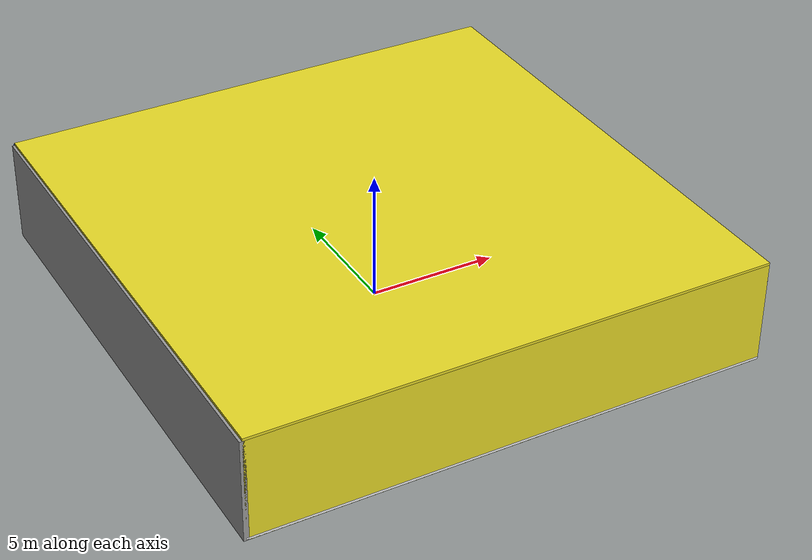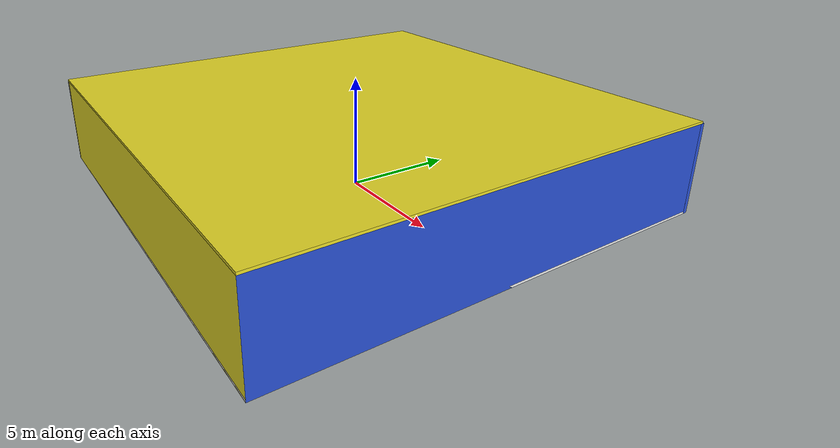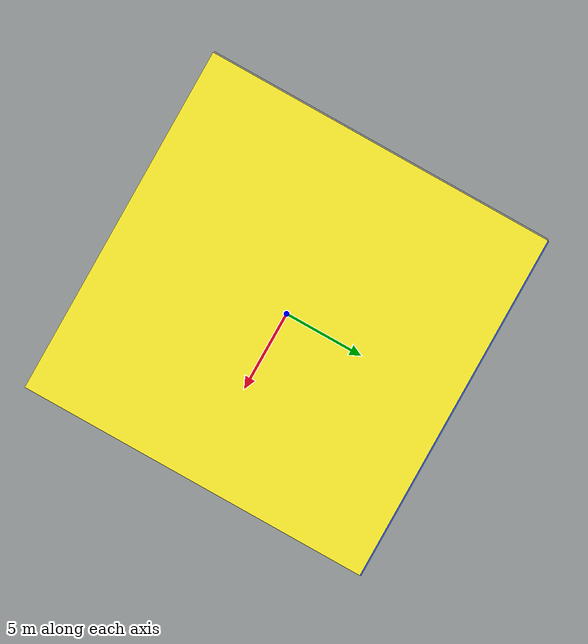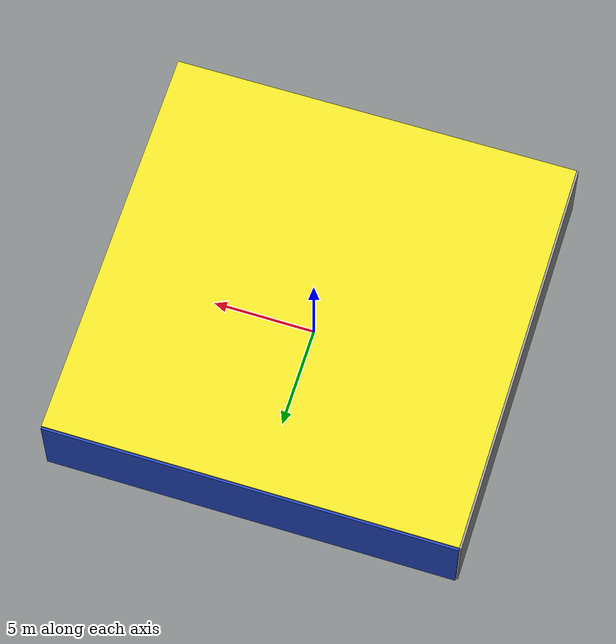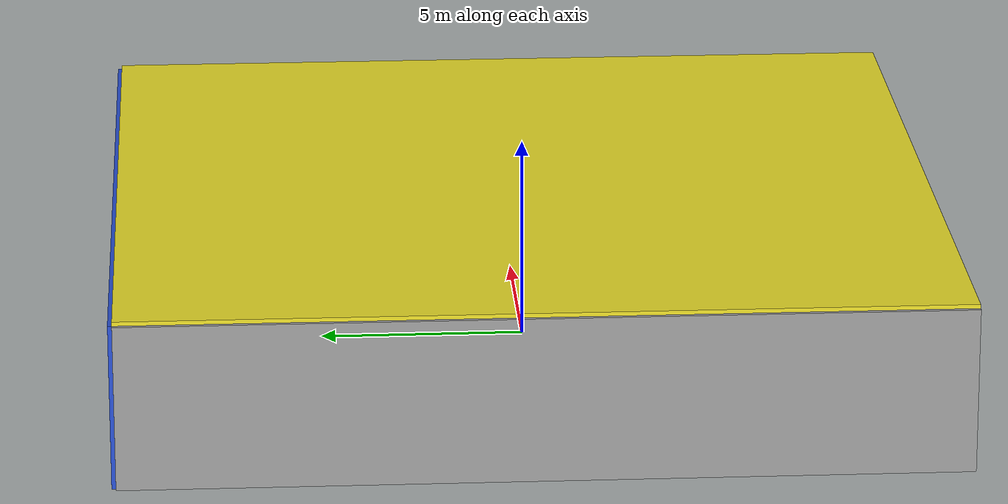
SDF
<sdf version="1.4">
 <world name="default">
  <physics type="ode">
   <max_step_size>0.001</max_step_size>
   <real_time_factor>1</real_time_factor>
   <real_time_update_rate>1000</real_time_update_rate>
   <gravity>0 0 -9.8</gravity>
  </physics>
  <scene><ambient>0.4 0.4 0.4 1</ambient><background>0.7 0.7 0.7 1</background><shadows>1</shadows></scene>
  <model name="Surrounding">
   <static>1</static>
   <link name="Ceiling">
    <collision name="Ceiling_Collision"><geometry><box><size>20 20 0.1</size></box></geometry></collision>
    <visual name="Ceiling_Visual">
     <geometry><box><size>20 20 0.1</size></box></geometry>
     <material>
      <script><uri>file://media/materials/scripts/gazebo.material</uri><name>Gazebo/Yellow</name></script>
     </material>
    </visual>
    <pose>0 0 4.05 0 0 0</pose>
   </link>
   <link name="Wall_South">
    <collision name="Wall_South_Collision">
     <geometry><box><size>20 0 4</size></box></geometry>
     <pose>0 0 2 0 -0 0</pose>
    </collision>
    <visual name="Wall_South_Visual">
     <pose>0 0 2 0 -0 0</pose>
     <geometry><box><size>20 0 4</size></box></geometry>
     <material>
      <script><uri>file://media/materials/scripts/gazebo.material</uri><name>Gazebo/YellowGlow</name></script>
     </material>
    </visual>
    <velocity_decay><linear>0</linear><angular>0</angular></velocity_decay>
    <pose>0 -10 0 0 -0 0</pose>
   </link>
   <link name="Wall_East">
    <collision name="Wall_21_Collision">
     <geometry><box><size>20 0 4</size></box></geometry>
     <pose>0 0 2 0 -0 0</pose>
    </collision>
    <visual name="Wall_21_Visual">
     <pose>0 0 2 0 -0 0</pose>
     <geometry><box><size>20 0 4</size></box></geometry>
     <material>
      <script><uri>file://media/materials/scripts/gazebo.material</uri><name>Gazebo/Blue</name></script>
     </material>
    </visual>
    <velocity_decay><linear>0</linear><angular>0</angular></velocity_decay>
    <pose>10 0 0 0 -0 1.5708</pose>
   </link>
   <link name="Wall_North">
    <collision name="Wall_22_Collision">
     <geometry><box><size>20 0.2 4</size></box></geometry>
     <pose>0 0 2 0 -0 0</pose>
    </collision>
    <visual name="Wall_22_Visual">
     <pose>0 0 2 0 -0 0</pose>
     <geometry><box><size>20 0.2 4</size></box></geometry>
     <material>
      <script><uri>file://media/materials/scripts/gazebo.material</uri><name>Gazebo/Blue</name></script>
     </material>
    </visual>
    <velocity_decay><linear>0</linear><angular>0</angular></velocity_decay>
    <pose>0 10 0 0 -0 0</pose>
   </link>
   <link name="Wall_West">
    <collision name="Wall_23_Collision">
     <geometry><box><size>20 0.2 4</size></box></geometry>
     <pose>0 0 2 0 -0 0</pose>
    </collision>
    <visual name="Wall_23_Visual">
     <pose>0 0 2 0 -0 0</pose>
     <geometry><box><size>20 0.2 4</size></box></geometry>
     <material>
      <script><uri>file://media/materials/scripts/gazebo.material</uri><name>Gazebo/GreyGradientSky</name></script>
     </material>
    </visual>
    <velocity_decay><linear>0</linear><angular>0</angular></velocity_decay>
    <pose>-10 0 0 0 0 -1.5708</pose>
   </link>
   <link name="Ground_link">
    <collision name="collision">
     <pose>0 0 .05 0 -0 0</pose>
     <geometry><box><size>20 20 0.1</size></box></geometry>
    </collision>
    <visual name="visual">
     <pose>0 0 .05 0 -0 0</pose>
     <geometry><box><size>20 20 0.1</size></box></geometry>
     <material>
      <script><uri>file://media/materials/scripts/gazebo.material</uri><name>Gazebo/White</name></script>
     </material>
    </visual>
   </link>
   <static>1</static>
  </model>
  <spherical_coordinates>
   <surface_model>EARTH_WGS84</surface_model>
   <latitude_deg>0</latitude_deg>
   <longitude_deg>0</longitude_deg>
   <elevation>0</elevation>
   <heading_deg>0</heading_deg>
  </spherical_coordinates>
  <light name="lightball_0" type="diffuse">
   <diffuse>0.8 0.8 0.8 1</diffuse>
   <specular>0.2 0.2 0.2 1</specular>
   <attenuation>
    <range>100</range>
    <constant>0.7</constant>
    <linear>0.01</linear>
    <quadratic>0.001</quadratic>
   </attenuation>
   <direction>-0.5 0.1 -0.9</direction>
   <pose>-9.02049176771 0.979372460372 3.10922180972 0 0 0</pose>
  </light>
  <light name="lightball_1" type="diffuse">
   <diffuse>0.8 0.8 0.8 1</diffuse>
   <specular>0.2 0.2 0.2 1</specular>
   <attenuation>
    <range>100</range>
    <constant>0.7</constant>
    <linear>0.01</linear>
    <quadratic>0.001</quadratic>
   </attenuation>
   <direction>-0.5 0.1 -0.9</direction>
   <pose>5.34812555786 -8.36072582806 1.98223913162 0 0 0</pose>
  </light>
  <light name="lightball_2" type="diffuse">
   <diffuse>0.8 0.8 0.8 1</diffuse>
   <specular>0.2 0.2 0.2 1</specular>
   <attenuation>
    <range>100</range>
    <constant>0.7</constant>
    <linear>0.01</linear>
    <quadratic>0.001</quadratic>
   </attenuation>
   <direction>-0.5 0.1 -0.9</direction>
   <pose>2.54060089787 7.4093626631 3.18627208361 0 0 0</pose>
  </light>
  <light name="lightball_3" type="diffuse">
   <diffuse>0.8 0.8 0.8 1</diffuse>
   <specular>0.2 0.2 0.2 1</specular>
   <attenuation>
    <range>100</range>
    <constant>0.7</constant>
    <linear>0.01</linear>
    <quadratic>0.001</quadratic>
   </attenuation>
   <direction>-0.5 0.1 -0.9</direction>
   <pose>5.40389508168 7.19830218969 2.15029610346 0 0 0</pose>
  </light>
  <light name="lightball_4" type="diffuse">
   <diffuse>0.8 0.8 0.8 1</diffuse>
   <specular>0.2 0.2 0.2 1</specular>
   <attenuation>
    <range>100</range>
    <constant>0.7</constant>
    <linear>0.01</linear>
    <quadratic>0.001</quadratic>
   </attenuation>
   <direction>-0.5 0.1 -0.9</direction>
   <pose>3.12679834834 -8.44143762102 1.32563071518 0 0 0</pose>
  </light>
  <light name="lightball_5" type="diffuse">
   <diffuse>0.8 0.8 0.8 1</diffuse>
   <specular>0.2 0.2 0.2 1</specular>
   <attenuation>
    <range>100</range>
    <constant>0.7</constant>
    <linear>0.01</linear>
    <quadratic>0.001</quadratic>
   </attenuation>
   <direction>-0.5 0.1 -0.9</direction>
   <pose>-8.27544850223 0.149774887802 0.765687153884 0 0 0</pose>
  </light>
  <include><uri>model://table</uri><pose>-8.6507129263 7.17822733869 0 0 0 2.92806573589</pose></include>
  <include>
   <uri>model://construction_cone</uri>
   <pose>-4.08146837423 -5.63275106515 0 0 0 2.18813175661</pose>
  </include>
  <include><uri>model://cabinet</uri><pose>-0.438923103432 -4.64229646094 0 0 0 2.68068808226</pose></include>
  <include>
   <uri>model://construction_cone</uri>
   <pose>3.3591272831 -1.07083435206 0 0 0 0.0769665988758</pose>
  </include>
 </world>
</sdf>

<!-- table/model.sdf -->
<sdf version="1.5">
  <model name="table">
    <static>true</static>
    <link name="link">
      <collision name="surface">
        <pose>0 0 1.0 0 0 0</pose>
        <geometry>
          <box>
            <size>1.5 0.8 0.03</size>
          </box>
        </geometry>
        <surface>
          <friction>
            <ode>
              <mu>0.6</mu>
              <mu2>0.6</mu2>
            </ode>
          </friction>
        </surface>
      </collision>
      <visual name="visual1">
        <pose>0 0 1.0 0 0 0</pose>
        <geometry>
          <box>
            <size>1.5 0.8 0.03</size>
          </box>
        </geometry>
        <material>
          <script>
            <uri>model://media/materials/scripts/gazebo.material</uri>
            <name>Gazebo/Wood</name>
          </script>
        </material>
      </visual>
      <collision name="front_left_leg">
        <pose>0.68 0.38 0.5 0 0 0</pose>
        <geometry>
          <cylinder>
            <radius>0.02</radius>
            <length>1.0</length>
          </cylinder>
        </geometry>
      </collision>
      <visual name="front_left_leg">
        <pose>0.68 0.38 0.5 0 0 0</pose>
        <geometry>
          <cylinder>
            <radius>0.02</radius>
            <length>1.0</length>
          </cylinder>
        </geometry>
        <material>
          <script>
            <uri>model://media/materials/scripts/gazebo.material</uri>
            <name>Gazebo/Grey</name>
          </script>
        </material>
      </visual>
      <collision name="front_right_leg">
        <pose>0.68 -0.38 0.5 0 0 0</pose>
        <geometry>
          <cylinder>
            <radius>0.02</radius>
            <length>1.0</length>
          </cylinder>
        </geometry>
      </collision>
      <visual name="front_right_leg">
        <pose>0.68 -0.38 0.5 0 0 0</pose>
        <geometry>
          <cylinder>
            <radius>0.02</radius>
            <length>1.0</length>
          </cylinder>
        </geometry>
        <material>
          <script>
            <uri>model://media/materials/scripts/gazebo.material</uri>
            <name>Gazebo/Grey</name>
          </script>
        </material>
      </visual>
      <collision name="back_right_leg">
        <pose>-0.68 -0.38 0.5 0 0 0</pose>
        <geometry>
          <cylinder>
            <radius>0.02</radius>
            <length>1.0</length>
          </cylinder>
        </geometry>
      </collision>
      <visual name="back_right_leg">
        <pose>-0.68 -0.38 0.5 0 0 0</pose>
        <geometry>
          <cylinder>
            <radius>0.02</radius>
            <length>1.0</length>
          </cylinder>
        </geometry>
        <material>
          <script>
            <uri>model://media/materials/scripts/gazebo.material</uri>
            <name>Gazebo/Grey</name>
          </script>
        </material>
      </visual>
      <collision name="back_left_leg">
        <pose>-0.68 0.38 0.5 0 0 0</pose>
        <geometry>
          <cylinder>
            <radius>0.02</radius>
            <length>1.0</length>
          </cylinder>
        </geometry>
      </collision>
      <visual name="back_left_leg">
        <pose>-0.68 0.38 0.5 0 0 0</pose>
        <geometry>
          <cylinder>
            <radius>0.02</radius>
            <length>1.0</length>
          </cylinder>
        </geometry>
        <material>
          <script>
            <uri>model://media/materials/scripts/gazebo.material</uri>
            <name>Gazebo/Grey</name>
          </script>
        </material>
      </visual>
    </link>
  </model>
</sdf>

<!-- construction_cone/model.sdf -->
<sdf version="1.5">
  <model name="Construction Cone">
    <link name="link">
      <collision name="collision">
        <geometry>
          <mesh>
            <scale>10 10 10</scale>
            <uri>file://isr-testbed/construction_cone/meshes/construction_cone.dae</uri>
          </mesh>
        </geometry>
      </collision>
      <visual name="visual">
        <geometry>
          <mesh>
            <scale>10 10 10</scale>
            <uri>file://isr-testbed/construction_cone/meshes/construction_cone.dae</uri>
          </mesh>
        </geometry>
      </visual>
    </link>
  </model>
</sdf>

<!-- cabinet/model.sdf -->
<sdf version="1.5">
  <model name="cabinet">
    <static>true</static>
    <link name="cabinet_bottom_plate">
      <inertial>
        <pose>0 0 -1 0 0 0</pose>
        <inertia>
          <ixx>2.050000</ixx>
          <ixy>0</ixy>
          <ixz>0</ixz>
          <iyy>2.050000</iyy>
          <iyz>0</iyz>
          <izz>2.050000</izz>
        </inertia>
        <mass>25.000000</mass>
      </inertial>
      <collision name="cabinet_bottom_plate_geom">
        <pose>0 0 0.010000 0 0 0</pose>
        <geometry>
          <box>
            <size>0.450000 0.450000 0.020000</size>
          </box>
        </geometry>
      </collision>
      <visual name="cabinet_bottom_plate_geom_visual">
        <pose>0 0 0.010000 0 0 0</pose>
        <geometry>
          <box>
            <size>0.450000 0.450000 0.020000</size>
          </box>
        </geometry>
        <material>
          <script>
            <uri>model://media/materials/scripts/gazebo.material</uri>
            <name>Gazebo/Wood</name>
          </script>
        </material>
      </visual>
      <collision name="cabinet_bottom_plate_geom_cabinet_back_plate">
        <pose>0.235000 0 0.510000 0 0 0</pose>
        <geometry>
          <box>
            <size>0.020000 0.450000 1.020000</size>
          </box>
        </geometry>
      </collision>
      <visual name="cabinet_bottom_plate_geom_cabinet_back_plate_visual">
        <pose>0.235000 0 0.510000 0 0 0</pose>
        <geometry>
          <box>
            <size>0.020000 0.450000 1.020000</size>
          </box>
        </geometry>
        <material>
          <script>
            <uri>model://media/materials/scripts/gazebo.material</uri>
            <name>Gazebo/Wood</name>
          </script>
        </material>
      </visual>
      <collision name="cabinet_bottom_plate_geom_cabinet_left_plate">
        <pose>0 0.235000 0.510000 0 0 0</pose>
        <geometry>
          <box>
            <size>0.450000 0.020000 1.020000</size>
          </box>
        </geometry>
      </collision>
      <visual name="cabinet_bottom_plate_geom_cabinet_left_plate_visual">
        <pose>0 0.235000 0.510000 0 0 0</pose>
        <geometry>
          <box>
            <size>0.450000 0.020000 1.020000</size>
          </box>
        </geometry>
        <material>
          <script>
            <uri>model://media/materials/scripts/gazebo.material</uri>
            <name>Gazebo/Wood</name>
          </script>
        </material>
      </visual>
      <collision name="cabinet_bottom_plate_geom_cabinet_middle_plate">
        <pose>0 0 0.510000 0 0 0</pose>
        <geometry>
          <box>
            <size>0.450000 0.450000 0.020000</size>
          </box>
        </geometry>
      </collision>
      <visual name="cabinet_bottom_plate_geom_cabinet_middle_plate_visual">
        <pose>0 0 0.510000 0 0 0</pose>
        <geometry>
          <box>
            <size>0.450000 0.450000 0.020000</size>
          </box>
        </geometry>
        <material>
          <script>
            <uri>model://media/materials/scripts/gazebo.material</uri>
            <name>Gazebo/Wood</name>
          </script>
        </material>
      </visual>
      <collision name="cabinet_bottom_plate_geom_cabinet_right_plate">
        <pose>0 -0.235000 0.510000 0 0 0</pose>
        <geometry>
          <box>
            <size>0.450000 0.020000 1.020000</size>
          </box>
        </geometry>
      </collision>
      <visual name="cabinet_bottom_plate_geom_cabinet_right_plate_visual">
        <pose>0 -0.235000 0.510000 0 0 0</pose>
        <geometry>
          <box>
            <size>0.450000 0.020000 1.020000</size>
          </box>
        </geometry>
        <material>
          <script>
            <uri>model://media/materials/scripts/gazebo.material</uri>
            <name>Gazebo/Wood</name>
          </script>
        </material>
      </visual>
      <collision name="cabinet_bottom_plate_geom_cabinet_top_plate">
        <pose>0 0 1.010000 0 0 0</pose>
        <geometry>
          <box>
            <size>0.450000 0.450000 0.020000</size>
          </box>
        </geometry>
      </collision>
      <visual name="cabinet_bottom_plate_geom_cabinet_top_plate_visual">
        <pose>0 0 1.010000 0 0 0</pose>
        <geometry>
          <box>
            <size>0.450000 0.450000 0.020000</size>
          </box>
        </geometry>
        <material>
          <script>
            <uri>model://media/materials/scripts/gazebo.material</uri>
            <name>Gazebo/Wood</name>
          </script>
        </material>
      </visual>
    </link>
  </model>
</sdf>
